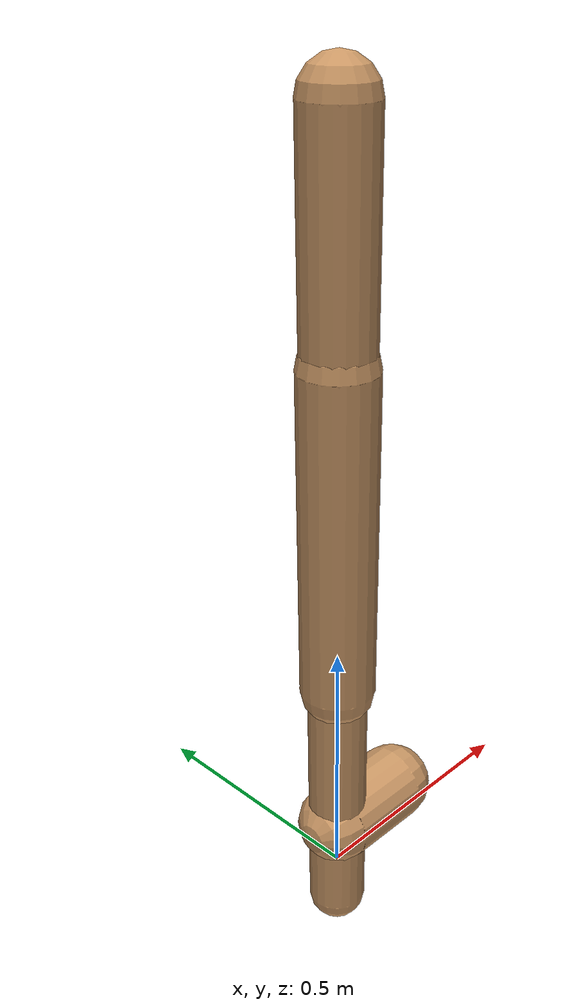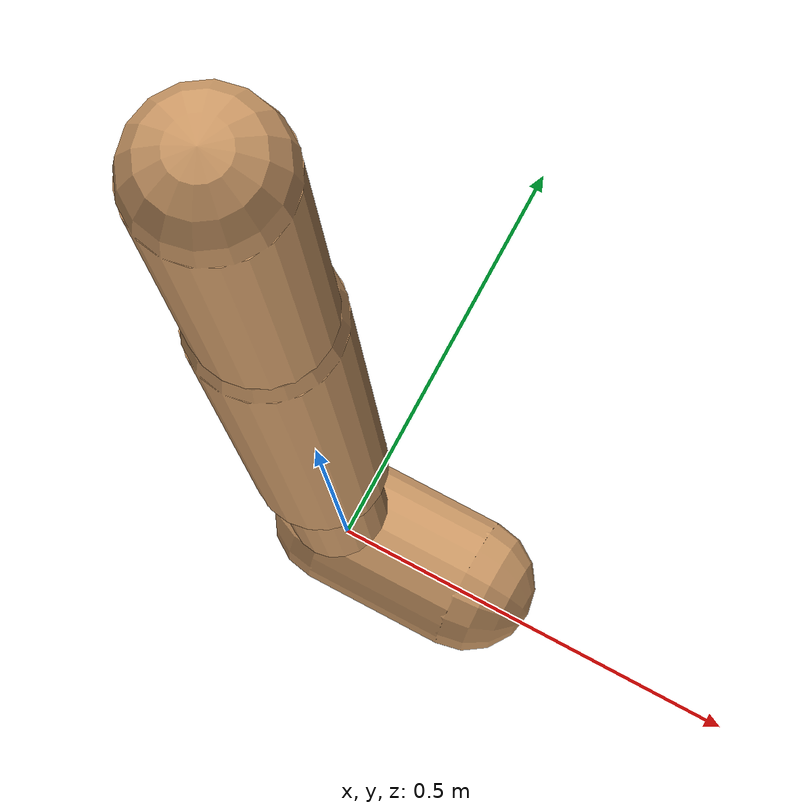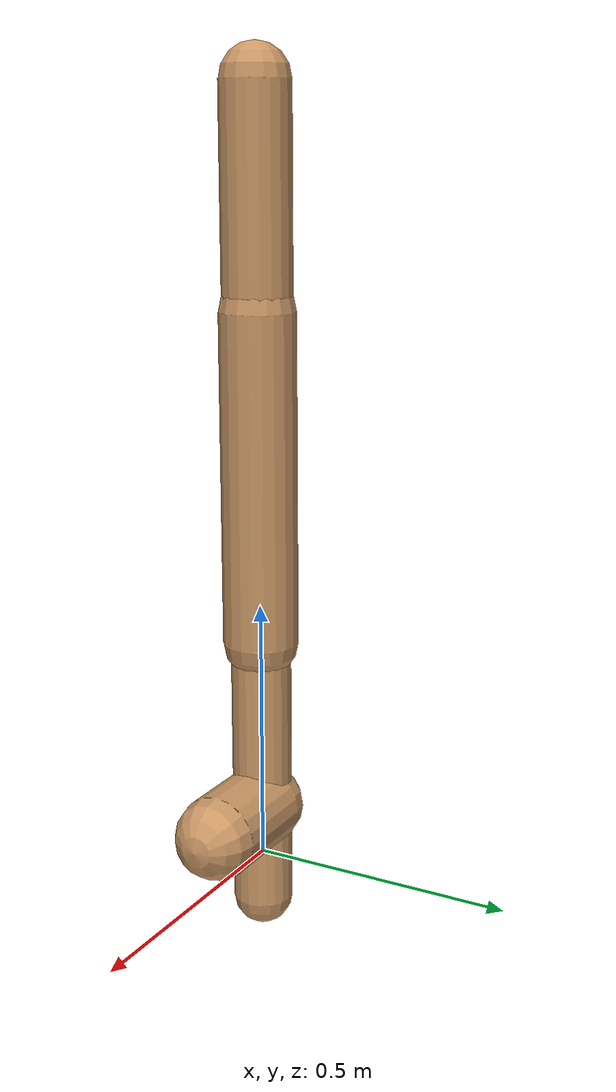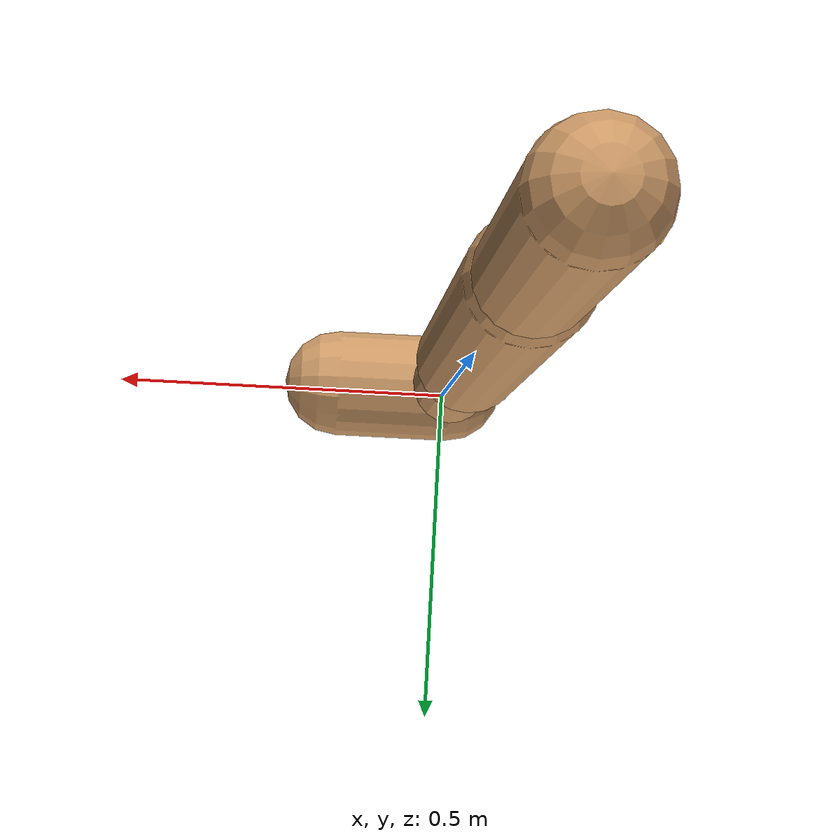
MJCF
<mujoco model="walker2d">
  <compiler angle="degree" coordinate="global" inertiafromgeom="true" />
  <default>
    <joint armature="0.01" damping=".1" limited="true" />
    <geom conaffinity="0" condim="3" contype="1" density="1000" friction="0.8 .1 .1" rgba="0.8 0.6 .4 1" />
  </default>
  <option integrator="RK4" timestep="0.002" />
  <worldbody>

    <body name="torso" pos="0 0 0.35821993288372306">
      <joint armature="0" axis="1 0 0" damping="0" limited="false" name="ignorex" pos="0 0 0" stiffness="0" type="slide" />
      <joint armature="0" axis="0 0 1" damping="0" limited="false" name="ignorez" pos="0 0 0" ref="1.25" stiffness="0" type="slide" />
      <joint armature="0" axis="0 1 0" damping="0" limited="false" name="ignorey" pos="0 0 0" stiffness="0" type="hinge" />
      <geom fromto="0 0 1.45 0 0 1.05" name="torso_geom" size="0.06476931824167906" type="capsule" />
      <body name="thigh">
        <joint axis="0 -1 0" name="thigh_joint" pos="0 0 1.05" range="-150 0" type="hinge" />
        <geom fromto="0.0 0.0 1.05 0.0 0.0 0.43031687389718376" name="thigh_geom" size="0.07082428826355883" type="capsule" />
        <body name="leg" pos="0.0 0.0 -0.16968312610281622">
          <joint axis="0 -1 0" name="leg_joint" pos="0 0 0.6" range="-150 0" type="hinge" />
          <geom fromto="0.0 0.0 0.6 0.0 0.0 -0.08853680678090686" name="leg_geom" size="0.05665943061084706" type="capsule" />
          <body name="foot" pos="0.0 0.0 -0.18853680678090687">
            <joint axis="0 -1 0" name="foot_joint" pos="0 0 0.1" range="-45 45" type="hinge" />
            <geom fromto="0.0 0.0 0.1 0.16530641044597993 0.0 0.1" name="foot_geom" size="0.07818333621315826" type="capsule" />
          </body>
        </body>
      </body>

      <body name="thigh_left">
        <joint axis="0 -1 0" name="thigh_left_joint" pos="0 0 1.05" range="-150 0" type="hinge" />
        <geom fromto="0.0 0.0 1.05 0.0 0.0 0.43031687389718376" name="thigh_left_geom" rgba=".7 .3 .6 1" size="0.07082428826355883" type="capsule" />
        <body name="leg_left" pos="0.0 0.0 -0.16968312610281622">
          <joint axis="0 -1 0" name="leg_left_joint" pos="0 0 0.6" range="-150 0" type="hinge" />
          <geom fromto="0.0 0.0 0.6 0.0 0.0 -0.08853680678090686" name="leg_left_geom" rgba=".7 .3 .6 1" size="0.05665943061084706" type="capsule" />
          <body name="foot_left" pos="0.0 0.0 -0.18853680678090687">
            <joint axis="0 -1 0" name="foot_left_joint" pos="0 0 0.1" range="-45 45" type="hinge" />
            <geom fromto="0.0 0.0 0.1 0.16530641044597993 0.0 0.1" name="foot_left_geom" rgba=".7 .3 .6 1" size="0.07818333621315826" type="capsule" />
          </body>
        </body>
      </body>
    </body>
  </worldbody>
  <actuator>

    <motor ctrllimited="true" ctrlrange="-1.0 1.0" gear="100" joint="thigh_joint" />
    <motor ctrllimited="true" ctrlrange="-1.0 1.0" gear="100" joint="leg_joint" />
    <motor ctrllimited="true" ctrlrange="-1.0 1.0" gear="100" joint="foot_joint" />
    <motor ctrllimited="true" ctrlrange="-1.0 1.0" gear="100" joint="thigh_left_joint" />
    <motor ctrllimited="true" ctrlrange="-1.0 1.0" gear="100" joint="leg_left_joint" />
    <motor ctrllimited="true" ctrlrange="-1.0 1.0" gear="100" joint="foot_left_joint" />

  </actuator>
</mujoco>
